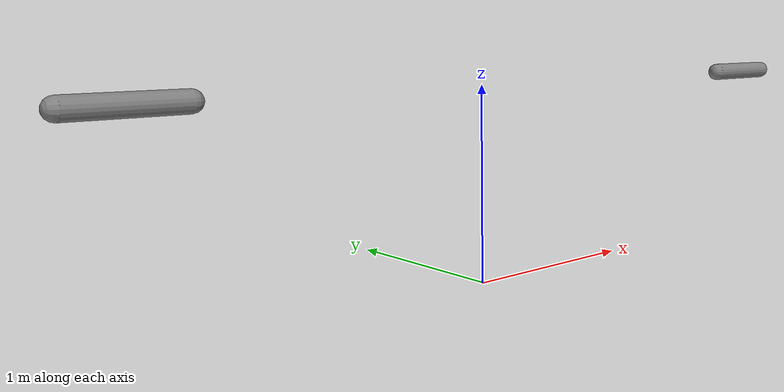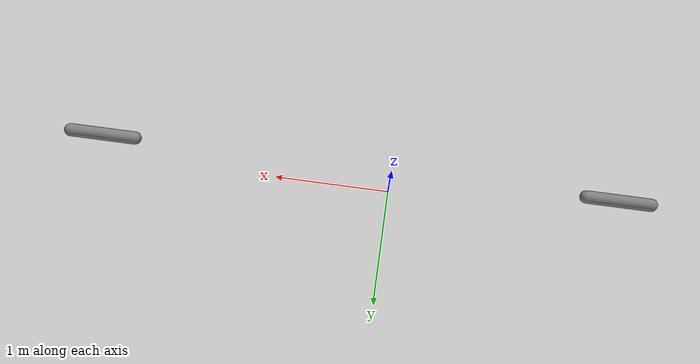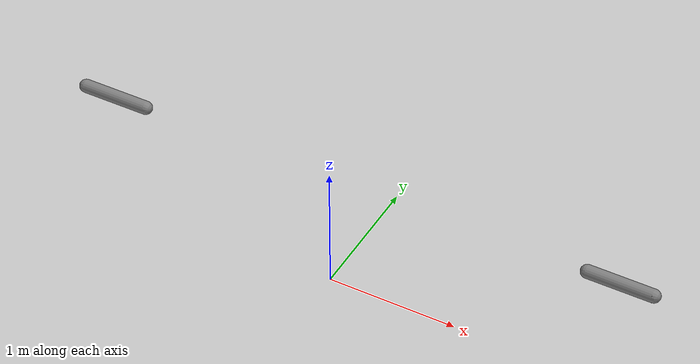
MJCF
<mujoco model="armature_test">
        <option gravity="0 0 -9.81" timestep="0.002" sleep_tolerance="0.1">
            <flag sleep="enable"/>
        </option>
        <worldbody>
            <body name="arm_a" pos="-2 0 1">
                <joint name="h_a" type="hinge" axis="0 1 0" armature="0.5" damping="10"/>
                <geom type="capsule" size="0.05" fromto="0 0 0 0.5 0 0" mass="1"/>
            </body>
            <body name="arm_b" pos="2 0 1">
                <joint name="h_b" type="hinge" axis="0 1 0" armature="0.5" damping="10"/>
                <geom type="capsule" size="0.05" fromto="0 0 0 0.5 0 0" mass="1"/>
            </body>
        </worldbody>
    </mujoco>
